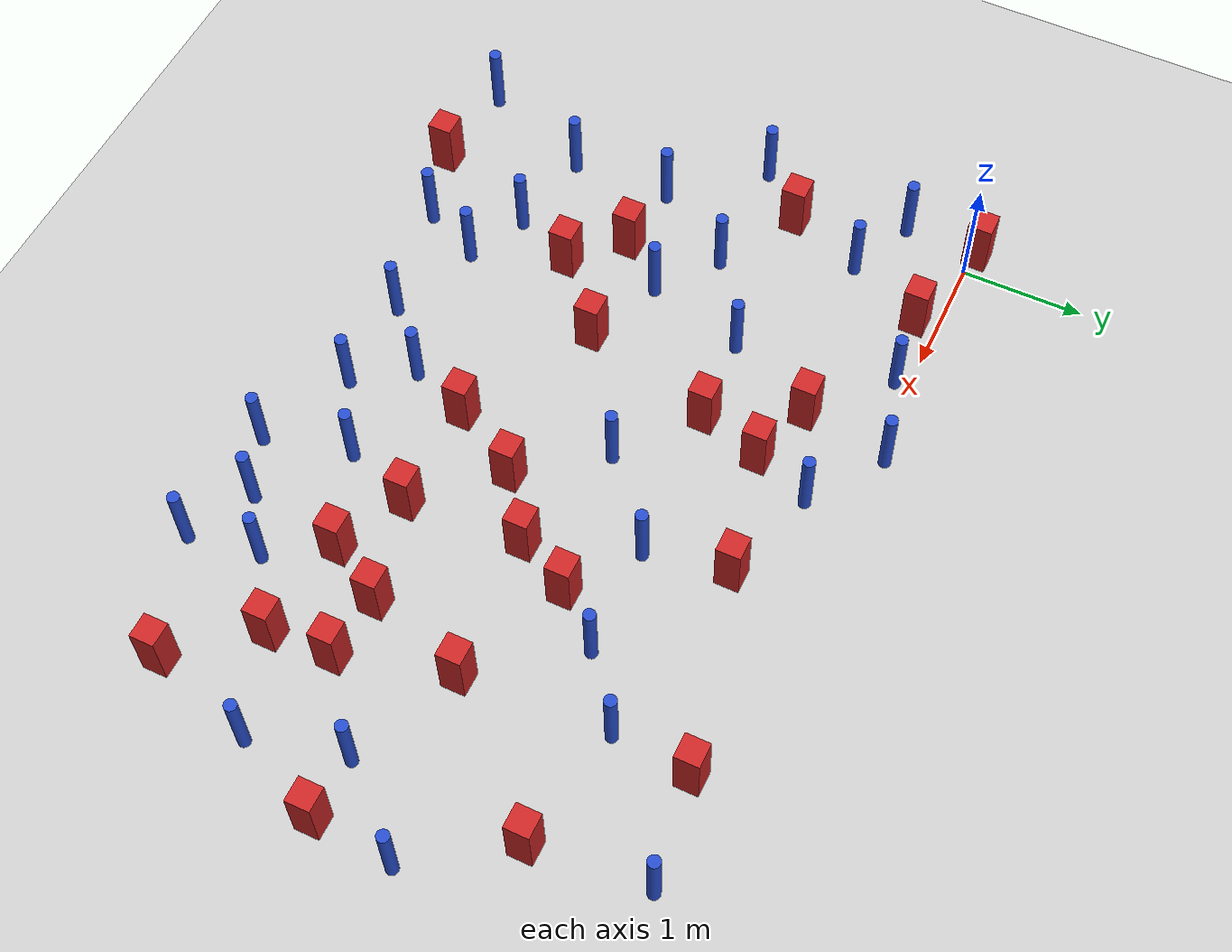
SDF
<sdf version="1.6">
 <world name="default">
  <model name="ground_plane">
   <static>1</static>
   <link name="link">
    <collision name="collision">
     <geometry><plane><normal>0 0 1</normal><size>100 100</size></plane></geometry>
     <surface><friction><ode><mu>100</mu><mu2>50</mu2></ode></friction></surface>
    </collision>
    <visual name="visual">
     <cast_shadows>0</cast_shadows>
     <geometry><plane><normal>0 0 1</normal><size>100 100</size></plane></geometry>
     <material>
      <ambient>1.0 1.0 1.0 1.0</ambient>
      <diffuse>0.8 0.8 0.8 1.0</diffuse>
      <specular>0.01 0.01 0.01 1.000000</specular>
     </material>
    </visual>
   </link>
  </model>
  <model name="NamedLocations">
   <static>true</static>
   <link name="DefaultStart"><pose>8.5 0 0 0 0 3.14</pose></link>
  </model>
  <model name="pole_obstacle1">
   <static>true</static>
   <pose>-0.185130693116 -0.5815067164 2.88873142074e-08 -9.90536690341e-09 4.60219948977e-07 -1.20965994968e-07</pose>
   <link name="link">
    <pose>0 0 0.3 0 -0 0</pose>
    <inertial>
     <mass>1</mass>
     <inertia><ixx>0.145833</ixx><ixy>0</ixy><ixz>0</ixz><iyy>0.145833</iyy><iyz>0</iyz><izz>0.125</izz></inertia>
    </inertial>
    <collision name="collision">
     <geometry><cylinder><radius>0.05</radius><length>.6</length></cylinder></geometry>
    </collision>
    <visual name="visual">
     <geometry><cylinder><radius>0.05</radius><length>.6</length></cylinder></geometry>
     <material>
      <script><name>Gazebo/Blue</name><uri>file://media/materials/scripts/gazebo.material</uri></script>
     </material>
    </visual>
   </link>
  </model>
  <model name="square_post_obstacle5">
   <static>true</static>
   <pose>4.07274696341 -1.62590643043 8.22691968438e-08 7.2212513382e-06 -7.54495500217e-07 2.29674213826e-05</pose>
   <link name="link">
    <pose>0 0 0.25 0 -0 0</pose>
    <inertial>
     <mass>100</mass>
     <inertia>
      <ixx>0.166667</ixx>
      <ixy>0</ixy>
      <ixz>0</ixz>
      <iyy>0.166667</iyy>
      <iyz>0</iyz>
      <izz>0.166667</izz>
     </inertia>
    </inertial>
    <collision name="collision"><geometry><box><size>.2 .2 .5</size></box></geometry></collision>
    <visual name="visual">
     <geometry><box><size>.2 .2 .5</size></box></geometry>
     <material>
      <script><name>Gazebo/Red</name><uri>file://media/materials/scripts/gazebo.material</uri></script>
     </material>
    </visual>
   </link>
  </model>
  <model name="pole_obstacle4">
   <static>true</static>
   <pose>1.2756648102 -0.111418900228 2.88873142074e-08 -9.90536689715e-09 4.60219948992e-07 -1.20965994959e-07</pose>
   <link name="link">
    <pose>0 0 0.3 0 -0 0</pose>
    <inertial>
     <mass>1</mass>
     <inertia><ixx>0.145833</ixx><ixy>0</ixy><ixz>0</ixz><iyy>0.145833</iyy><iyz>0</iyz><izz>0.125</izz></inertia>
    </inertial>
    <collision name="collision">
     <geometry><cylinder><radius>0.05</radius><length>.6</length></cylinder></geometry>
    </collision>
    <visual name="visual">
     <geometry><cylinder><radius>0.05</radius><length>.6</length></cylinder></geometry>
     <material>
      <script><name>Gazebo/Blue</name><uri>file://media/materials/scripts/gazebo.material</uri></script>
     </material>
    </visual>
   </link>
  </model>
  <model name="pole_obstacle5">
   <static>true</static>
   <pose>2.58989376314 -0.327966249412 2.88873142074e-08 -9.90536689307e-09 4.60219949002e-07 -1.20965994954e-07</pose>
   <link name="link">
    <pose>0 0 0.3 0 -0 0</pose>
    <inertial>
     <mass>1</mass>
     <inertia><ixx>0.145833</ixx><ixy>0</ixy><ixz>0</ixz><iyy>0.145833</iyy><iyz>0</iyz><izz>0.125</izz></inertia>
    </inertial>
    <collision name="collision">
     <geometry><cylinder><radius>0.05</radius><length>.6</length></cylinder></geometry>
    </collision>
    <visual name="visual">
     <geometry><cylinder><radius>0.05</radius><length>.6</length></cylinder></geometry>
     <material>
      <script><name>Gazebo/Blue</name><uri>file://media/materials/scripts/gazebo.material</uri></script>
     </material>
    </visual>
   </link>
  </model>
  <model name="square_post_obstacle13">
   <static>true</static>
   <pose>4.74317763244 -2.84132104916 8.22691968438e-08 7.2212513382e-06 -7.54495500217e-07 2.29674213826e-05</pose>
   <link name="link">
    <pose>0 0 0.25 0 -0 0</pose>
    <inertial>
     <mass>100</mass>
     <inertia>
      <ixx>0.166667</ixx>
      <ixy>0</ixy>
      <ixz>0</ixz>
      <iyy>0.166667</iyy>
      <iyz>0</iyz>
      <izz>0.166667</izz>
     </inertia>
    </inertial>
    <collision name="collision"><geometry><box><size>.2 .2 .5</size></box></geometry></collision>
    <visual name="visual">
     <geometry><box><size>.2 .2 .5</size></box></geometry>
     <material>
      <script><name>Gazebo/Red</name><uri>file://media/materials/scripts/gazebo.material</uri></script>
     </material>
    </visual>
   </link>
  </model>
  <model name="pole_obstacle8">
   <static>true</static>
   <pose>4.94769768114 -0.812549255114 2.88873142074e-08 -9.90536689837e-09 4.60219948989e-07 -1.2096599496e-07</pose>
   <link name="link">
    <pose>0 0 0.3 0 -0 0</pose>
    <inertial>
     <mass>1</mass>
     <inertia><ixx>0.145833</ixx><ixy>0</ixy><ixz>0</ixz><iyy>0.145833</iyy><iyz>0</iyz><izz>0.125</izz></inertia>
    </inertial>
    <collision name="collision">
     <geometry><cylinder><radius>0.05</radius><length>.6</length></cylinder></geometry>
    </collision>
    <visual name="visual">
     <geometry><cylinder><radius>0.05</radius><length>.6</length></cylinder></geometry>
     <material>
      <script><name>Gazebo/Blue</name><uri>file://media/materials/scripts/gazebo.material</uri></script>
     </material>
    </visual>
   </link>
  </model>
  <model name="square_post_obstacle18">
   <static>true</static>
   <pose>2.39872946446 -0.807188189583 8.22691968438e-08 7.2212513382e-06 -7.54495500217e-07 2.29674213826e-05</pose>
   <link name="link">
    <pose>0 0 0.25 0 -0 0</pose>
    <inertial>
     <mass>100</mass>
     <inertia>
      <ixx>0.166667</ixx>
      <ixy>0</ixy>
      <ixz>0</ixz>
      <iyy>0.166667</iyy>
      <iyz>0</iyz>
      <izz>0.166667</izz>
     </inertia>
    </inertial>
    <collision name="collision"><geometry><box><size>.2 .2 .5</size></box></geometry></collision>
    <visual name="visual">
     <geometry><box><size>.2 .2 .5</size></box></geometry>
     <material>
      <script><name>Gazebo/Red</name><uri>file://media/materials/scripts/gazebo.material</uri></script>
     </material>
    </visual>
   </link>
  </model>
  <model name="pole_obstacle10">
   <static>true</static>
   <pose>1.58691725315 -3.72829903937 2.88873142074e-08 -9.90536689791e-09 4.6021994899e-07 -1.20965994959e-07</pose>
   <link name="link">
    <pose>0 0 0.3 0 -0 0</pose>
    <inertial>
     <mass>1</mass>
     <inertia><ixx>0.145833</ixx><ixy>0</ixy><ixz>0</ixz><iyy>0.145833</iyy><iyz>0</iyz><izz>0.125</izz></inertia>
    </inertial>
    <collision name="collision">
     <geometry><cylinder><radius>0.05</radius><length>.6</length></cylinder></geometry>
    </collision>
    <visual name="visual">
     <geometry><cylinder><radius>0.05</radius><length>.6</length></cylinder></geometry>
     <material>
      <script><name>Gazebo/Blue</name><uri>file://media/materials/scripts/gazebo.material</uri></script>
     </material>
    </visual>
   </link>
  </model>
  <model name="square_post_obstacle19">
   <static>true</static>
   <pose>5.94538665112 -0.983028945299 8.22691968438e-08 7.2212513382e-06 -7.54495500217e-07 2.29674213826e-05</pose>
   <link name="link">
    <pose>0 0 0.25 0 -0 0</pose>
    <inertial>
     <mass>100</mass>
     <inertia>
      <ixx>0.166667</ixx>
      <ixy>0</ixy>
      <ixz>0</ixz>
      <iyy>0.166667</iyy>
      <iyz>0</iyz>
      <izz>0.166667</izz>
     </inertia>
    </inertial>
    <collision name="collision"><geometry><box><size>.2 .2 .5</size></box></geometry></collision>
    <visual name="visual">
     <geometry><box><size>.2 .2 .5</size></box></geometry>
     <material>
      <script><name>Gazebo/Red</name><uri>file://media/materials/scripts/gazebo.material</uri></script>
     </material>
    </visual>
   </link>
  </model>
  <model name="pole_obstacle15">
   <static>true</static>
   <pose>-0.0100249898607 -4.29935049244 2.88873142074e-08 -9.90536689611e-09 4.60219948995e-07 -1.20965994958e-07</pose>
   <link name="link">
    <pose>0 0 0.3 0 -0 0</pose>
    <inertial>
     <mass>1</mass>
     <inertia><ixx>0.145833</ixx><ixy>0</ixy><ixz>0</ixz><iyy>0.145833</iyy><iyz>0</iyz><izz>0.125</izz></inertia>
    </inertial>
    <collision name="collision">
     <geometry><cylinder><radius>0.05</radius><length>.6</length></cylinder></geometry>
    </collision>
    <visual name="visual">
     <geometry><cylinder><radius>0.05</radius><length>.6</length></cylinder></geometry>
     <material>
      <script><name>Gazebo/Blue</name><uri>file://media/materials/scripts/gazebo.material</uri></script>
     </material>
    </visual>
   </link>
  </model>
  <model name="pole_obstacle25">
   <static>true</static>
   <pose>4.84810254856 -4.40174628868 2.88873142074e-08 -9.90536690842e-09 4.60219948965e-07 -1.20965994976e-07</pose>
   <link name="link">
    <pose>0 0 0.3 0 -0 0</pose>
    <inertial>
     <mass>1</mass>
     <inertia><ixx>0.145833</ixx><ixy>0</ixy><ixz>0</ixz><iyy>0.145833</iyy><iyz>0</iyz><izz>0.125</izz></inertia>
    </inertial>
    <collision name="collision">
     <geometry><cylinder><radius>0.05</radius><length>.6</length></cylinder></geometry>
    </collision>
    <visual name="visual">
     <geometry><cylinder><radius>0.05</radius><length>.6</length></cylinder></geometry>
     <material>
      <script><name>Gazebo/Blue</name><uri>file://media/materials/scripts/gazebo.material</uri></script>
     </material>
    </visual>
   </link>
  </model>
  <model name="pole_obstacle26">
   <static>true</static>
   <pose>0.341179374261 -2.5330693544 2.88873142074e-08 -9.90536689663e-09 4.60219948993e-07 -1.20965994959e-07</pose>
   <link name="link">
    <pose>0 0 0.3 0 -0 0</pose>
    <inertial>
     <mass>1</mass>
     <inertia><ixx>0.145833</ixx><ixy>0</ixy><ixz>0</ixz><iyy>0.145833</iyy><iyz>0</iyz><izz>0.125</izz></inertia>
    </inertial>
    <collision name="collision">
     <geometry><cylinder><radius>0.05</radius><length>.6</length></cylinder></geometry>
    </collision>
    <visual name="visual">
     <geometry><cylinder><radius>0.05</radius><length>.6</length></cylinder></geometry>
     <material>
      <script><name>Gazebo/Blue</name><uri>file://media/materials/scripts/gazebo.material</uri></script>
     </material>
    </visual>
   </link>
  </model>
  <model name="square_post_obstacle35">
   <static>true</static>
   <pose>-0.165251494115 0.0400549485949 8.22691968438e-08 7.22125133819e-06 -7.54495500217e-07 2.29674213826e-05</pose>
   <link name="link">
    <pose>0 0 0.25 0 -0 0</pose>
    <inertial>
     <mass>100</mass>
     <inertia>
      <ixx>0.166667</ixx>
      <ixy>0</ixy>
      <ixz>0</ixz>
      <iyy>0.166667</iyy>
      <iyz>0</iyz>
      <izz>0.166667</izz>
     </inertia>
    </inertial>
    <collision name="collision"><geometry><box><size>.2 .2 .5</size></box></geometry></collision>
    <visual name="visual">
     <geometry><box><size>.2 .2 .5</size></box></geometry>
     <material>
      <script><name>Gazebo/Red</name><uri>file://media/materials/scripts/gazebo.material</uri></script>
     </material>
    </visual>
   </link>
  </model>
  <model name="pole_obstacle43">
   <static>true</static>
   <pose>1.36464720509 -4.19954920338 2.88873142074e-08 -9.90536689852e-09 4.60219948989e-07 -1.2096599496e-07</pose>
   <link name="link">
    <pose>0 0 0.3 0 -0 0</pose>
    <inertial>
     <mass>1</mass>
     <inertia><ixx>0.145833</ixx><ixy>0</ixy><ixz>0</ixz><iyy>0.145833</iyy><iyz>0</iyz><izz>0.125</izz></inertia>
    </inertial>
    <collision name="collision">
     <geometry><cylinder><radius>0.05</radius><length>.6</length></cylinder></geometry>
    </collision>
    <visual name="visual">
     <geometry><cylinder><radius>0.05</radius><length>.6</length></cylinder></geometry>
     <material>
      <script><name>Gazebo/Blue</name><uri>file://media/materials/scripts/gazebo.material</uri></script>
     </material>
    </visual>
   </link>
  </model>
  <model name="square_post_obstacle48">
   <static>true</static>
   <pose>2.23582939153 -1.32906481546 8.22691968438e-08 7.2212513382e-06 -7.54495500217e-07 2.29674213826e-05</pose>
   <link name="link">
    <pose>0 0 0.25 0 -0 0</pose>
    <inertial>
     <mass>100</mass>
     <inertia>
      <ixx>0.166667</ixx>
      <ixy>0</ixy>
      <ixz>0</ixz>
      <iyy>0.166667</iyy>
      <iyz>0</iyz>
      <izz>0.166667</izz>
     </inertia>
    </inertial>
    <collision name="collision"><geometry><box><size>.2 .2 .5</size></box></geometry></collision>
    <visual name="visual">
     <geometry><box><size>.2 .2 .5</size></box></geometry>
     <material>
      <script><name>Gazebo/Red</name><uri>file://media/materials/scripts/gazebo.material</uri></script>
     </material>
    </visual>
   </link>
  </model>
  <model name="square_post_obstacle49">
   <static>true</static>
   <pose>0.128574017205 -1.45696994531 8.22691968438e-08 7.2212513382e-06 -7.54495500217e-07 2.29674213826e-05</pose>
   <link name="link">
    <pose>0 0 0.25 0 -0 0</pose>
    <inertial>
     <mass>100</mass>
     <inertia>
      <ixx>0.166667</ixx>
      <ixy>0</ixy>
      <ixz>0</ixz>
      <iyy>0.166667</iyy>
      <iyz>0</iyz>
      <izz>0.166667</izz>
     </inertia>
    </inertial>
    <collision name="collision"><geometry><box><size>.2 .2 .5</size></box></geometry></collision>
    <visual name="visual">
     <geometry><box><size>.2 .2 .5</size></box></geometry>
     <material>
      <script><name>Gazebo/Red</name><uri>file://media/materials/scripts/gazebo.material</uri></script>
     </material>
    </visual>
   </link>
  </model>
  <model name="pole_obstacle53">
   <static>true</static>
   <pose>6.46625615034 -1.74263192992 2.88873142074e-08 -9.90536689445e-09 4.60219948999e-07 -1.20965994956e-07</pose>
   <link name="link">
    <pose>0 0 0.3 0 -0 0</pose>
    <inertial>
     <mass>1</mass>
     <inertia><ixx>0.145833</ixx><ixy>0</ixy><ixz>0</ixz><iyy>0.145833</iyy><iyz>0</iyz><izz>0.125</izz></inertia>
    </inertial>
    <collision name="collision">
     <geometry><cylinder><radius>0.05</radius><length>.6</length></cylinder></geometry>
    </collision>
    <visual name="visual">
     <geometry><cylinder><radius>0.05</radius><length>.6</length></cylinder></geometry>
     <material>
      <script><name>Gazebo/Blue</name><uri>file://media/materials/scripts/gazebo.material</uri></script>
     </material>
    </visual>
   </link>
  </model>
  <model name="square_post_obstacle58">
   <static>true</static>
   <pose>1.90014476493 -2.46379216931 8.22691968438e-08 7.2212513382e-06 -7.54495500217e-07 2.29674213826e-05</pose>
   <link name="link">
    <pose>0 0 0.25 0 -0 0</pose>
    <inertial>
     <mass>100</mass>
     <inertia>
      <ixx>0.166667</ixx>
      <ixy>0</ixy>
      <ixz>0</ixz>
      <iyy>0.166667</iyy>
      <iyz>0</iyz>
      <izz>0.166667</izz>
     </inertia>
    </inertial>
    <collision name="collision"><geometry><box><size>.2 .2 .5</size></box></geometry></collision>
    <visual name="visual">
     <geometry><box><size>.2 .2 .5</size></box></geometry>
     <material>
      <script><name>Gazebo/Red</name><uri>file://media/materials/scripts/gazebo.material</uri></script>
     </material>
    </visual>
   </link>
  </model>
  <model name="pole_obstacle64">
   <static>true</static>
   <pose>-0.243095953086 -1.84903900185 2.88873142074e-08 -9.90536689692e-09 4.60219948993e-07 -1.20965994958e-07</pose>
   <link name="link">
    <pose>0 0 0.3 0 -0 0</pose>
    <inertial>
     <mass>1</mass>
     <inertia><ixx>0.145833</ixx><ixy>0</ixy><ixz>0</ixz><iyy>0.145833</iyy><iyz>0</iyz><izz>0.125</izz></inertia>
    </inertial>
    <collision name="collision">
     <geometry><cylinder><radius>0.05</radius><length>.6</length></cylinder></geometry>
    </collision>
    <visual name="visual">
     <geometry><cylinder><radius>0.05</radius><length>.6</length></cylinder></geometry>
     <material>
      <script><name>Gazebo/Blue</name><uri>file://media/materials/scripts/gazebo.material</uri></script>
     </material>
    </visual>
   </link>
  </model>
  <model name="pole_obstacle65">
   <static>true</static>
   <pose>2.85040480021 -1.82261968247 2.88873142074e-08 -9.90536689395e-09 4.60219949e-07 -1.20965994953e-07</pose>
   <link name="link">
    <pose>0 0 0.3 0 -0 0</pose>
    <inertial>
     <mass>1</mass>
     <inertia><ixx>0.145833</ixx><ixy>0</ixy><ixz>0</ixz><iyy>0.145833</iyy><iyz>0</iyz><izz>0.125</izz></inertia>
    </inertial>
    <collision name="collision">
     <geometry><cylinder><radius>0.05</radius><length>.6</length></cylinder></geometry>
    </collision>
    <visual name="visual">
     <geometry><cylinder><radius>0.05</radius><length>.6</length></cylinder></geometry>
     <material>
      <script><name>Gazebo/Blue</name><uri>file://media/materials/scripts/gazebo.material</uri></script>
     </material>
    </visual>
   </link>
  </model>
  <model name="square_post_obstacle68">
   <static>true</static>
   <pose>5.00058886882 -0.168616555313 8.22691968438e-08 7.2212513382e-06 -7.54495500217e-07 2.29674213826e-05</pose>
   <link name="link">
    <pose>0 0 0.25 0 -0 0</pose>
    <inertial>
     <mass>100</mass>
     <inertia>
      <ixx>0.166667</ixx>
      <ixy>0</ixy>
      <ixz>0</ixz>
      <iyy>0.166667</iyy>
      <iyz>0</iyz>
      <izz>0.166667</izz>
     </inertia>
    </inertial>
    <collision name="collision"><geometry><box><size>.2 .2 .5</size></box></geometry></collision>
    <visual name="visual">
     <geometry><box><size>.2 .2 .5</size></box></geometry>
     <material>
      <script><name>Gazebo/Red</name><uri>file://media/materials/scripts/gazebo.material</uri></script>
     </material>
    </visual>
   </link>
  </model>
  <model name="pole_obstacle70">
   <static>true</static>
   <pose>0.363182992762 -3.36609427107 2.88873142074e-08 -9.90536689663e-09 4.60219948993e-07 -1.20965994959e-07</pose>
   <link name="link">
    <pose>0 0 0.3 0 -0 0</pose>
    <inertial>
     <mass>1</mass>
     <inertia><ixx>0.145833</ixx><ixy>0</ixy><ixz>0</ixz><iyy>0.145833</iyy><iyz>0</iyz><izz>0.125</izz></inertia>
    </inertial>
    <collision name="collision">
     <geometry><cylinder><radius>0.05</radius><length>.6</length></cylinder></geometry>
    </collision>
    <visual name="visual">
     <geometry><cylinder><radius>0.05</radius><length>.6</length></cylinder></geometry>
     <material>
      <script><name>Gazebo/Blue</name><uri>file://media/materials/scripts/gazebo.material</uri></script>
     </material>
    </visual>
   </link>
  </model>
  <model name="pole_obstacle85">
   <static>true</static>
   <pose>1.99145522379 0.0883656927276 2.88873142074e-08 -9.90536691348e-09 4.60219948953e-07 -1.20965994985e-07</pose>
   <link name="link">
    <pose>0 0 0.3 0 -0 0</pose>
    <inertial>
     <mass>1</mass>
     <inertia><ixx>0.145833</ixx><ixy>0</ixy><ixz>0</ixz><iyy>0.145833</iyy><iyz>0</iyz><izz>0.125</izz></inertia>
    </inertial>
    <collision name="collision">
     <geometry><cylinder><radius>0.05</radius><length>.6</length></cylinder></geometry>
    </collision>
    <visual name="visual">
     <geometry><cylinder><radius>0.05</radius><length>.6</length></cylinder></geometry>
     <material>
      <script><name>Gazebo/Blue</name><uri>file://media/materials/scripts/gazebo.material</uri></script>
     </material>
    </visual>
   </link>
  </model>
  <model name="square_post_obstacle84">
   <static>true</static>
   <pose>5.80408043261 -4.01826733563 8.22691968438e-08 7.2212513382e-06 -7.54495500217e-07 2.29674213826e-05</pose>
   <link name="link">
    <pose>0 0 0.25 0 -0 0</pose>
    <inertial>
     <mass>100</mass>
     <inertia>
      <ixx>0.166667</ixx>
      <ixy>0</ixy>
      <ixz>0</ixz>
      <iyy>0.166667</iyy>
      <iyz>0</iyz>
      <izz>0.166667</izz>
     </inertia>
    </inertial>
    <collision name="collision"><geometry><box><size>.2 .2 .5</size></box></geometry></collision>
    <visual name="visual">
     <geometry><box><size>.2 .2 .5</size></box></geometry>
     <material>
      <script><name>Gazebo/Red</name><uri>file://media/materials/scripts/gazebo.material</uri></script>
     </material>
    </visual>
   </link>
  </model>
  <model name="square_post_obstacle87">
   <static>true</static>
   <pose>3.00440219801 -3.03895604973 8.22691968438e-08 7.2212513382e-06 -7.54495500217e-07 2.29674213826e-05</pose>
   <link name="link">
    <pose>0 0 0.25 0 -0 0</pose>
    <inertial>
     <mass>100</mass>
     <inertia>
      <ixx>0.166667</ixx>
      <ixy>0</ixy>
      <ixz>0</ixz>
      <iyy>0.166667</iyy>
      <iyz>0</iyz>
      <izz>0.166667</izz>
     </inertia>
    </inertial>
    <collision name="collision"><geometry><box><size>.2 .2 .5</size></box></geometry></collision>
    <visual name="visual">
     <geometry><box><size>.2 .2 .5</size></box></geometry>
     <material>
      <script><name>Gazebo/Red</name><uri>file://media/materials/scripts/gazebo.material</uri></script>
     </material>
    </visual>
   </link>
  </model>
  <model name="pole_obstacle124">
   <static>true</static>
   <pose>3.52725288687 -1.24872715459 2.88873142074e-08 -9.90536689395e-09 4.60219949e-07 -1.20965994953e-07</pose>
   <link name="link">
    <pose>0 0 0.3 0 -0 0</pose>
    <inertial>
     <mass>1</mass>
     <inertia><ixx>0.145833</ixx><ixy>0</ixy><ixz>0</ixz><iyy>0.145833</iyy><iyz>0</iyz><izz>0.125</izz></inertia>
    </inertial>
    <collision name="collision">
     <geometry><cylinder><radius>0.05</radius><length>.6</length></cylinder></geometry>
    </collision>
    <visual name="visual">
     <geometry><cylinder><radius>0.05</radius><length>.6</length></cylinder></geometry>
     <material>
      <script><name>Gazebo/Blue</name><uri>file://media/materials/scripts/gazebo.material</uri></script>
     </material>
    </visual>
   </link>
  </model>
  <model name="pole_obstacle132">
   <static>true</static>
   <pose>0.367348133882 -0.825134937174 2.88873142074e-08 -9.9053668986e-09 4.60219948989e-07 -1.20965994961e-07</pose>
   <link name="link">
    <pose>0 0 0.3 0 -0 0</pose>
    <inertial>
     <mass>1</mass>
     <inertia><ixx>0.145833</ixx><ixy>0</ixy><ixz>0</ixz><iyy>0.145833</iyy><iyz>0</iyz><izz>0.125</izz></inertia>
    </inertial>
    <collision name="collision">
     <geometry><cylinder><radius>0.05</radius><length>.6</length></cylinder></geometry>
    </collision>
    <visual name="visual">
     <geometry><cylinder><radius>0.05</radius><length>.6</length></cylinder></geometry>
     <material>
      <script><name>Gazebo/Blue</name><uri>file://media/materials/scripts/gazebo.material</uri></script>
     </material>
    </visual>
   </link>
  </model>
  <model name="pole_obstacle134">
   <static>true</static>
   <pose>1.49889430895 -1.38467383807 2.88873142074e-08 -9.90536689672e-09 4.60219948993e-07 -1.20965994959e-07</pose>
   <link name="link">
    <pose>0 0 0.3 0 -0 0</pose>
    <inertial>
     <mass>1</mass>
     <inertia><ixx>0.145833</ixx><ixy>0</ixy><ixz>0</ixz><iyy>0.145833</iyy><iyz>0</iyz><izz>0.125</izz></inertia>
    </inertial>
    <collision name="collision">
     <geometry><cylinder><radius>0.05</radius><length>.6</length></cylinder></geometry>
    </collision>
    <visual name="visual">
     <geometry><cylinder><radius>0.05</radius><length>.6</length></cylinder></geometry>
     <material>
      <script><name>Gazebo/Blue</name><uri>file://media/materials/scripts/gazebo.material</uri></script>
     </material>
    </visual>
   </link>
  </model>
  <model name="pole_obstacle135">
   <static>true</static>
   <pose>4.33471470747 -4.13063483083 2.88873142074e-08 -9.90536690842e-09 4.60219948965e-07 -1.20965994976e-07</pose>
   <link name="link">
    <pose>0 0 0.3 0 -0 0</pose>
    <inertial>
     <mass>1</mass>
     <inertia><ixx>0.145833</ixx><ixy>0</ixy><ixz>0</ixz><iyy>0.145833</iyy><iyz>0</iyz><izz>0.125</izz></inertia>
    </inertial>
    <collision name="collision">
     <geometry><cylinder><radius>0.05</radius><length>.6</length></cylinder></geometry>
    </collision>
    <visual name="visual">
     <geometry><cylinder><radius>0.05</radius><length>.6</length></cylinder></geometry>
     <material>
      <script><name>Gazebo/Blue</name><uri>file://media/materials/scripts/gazebo.material</uri></script>
     </material>
    </visual>
   </link>
  </model>
  <model name="square_post_obstacle128">
   <static>true</static>
   <pose>3.40901335062 -0.571415719157 8.22691968438e-08 7.2212513382e-06 -7.54495500217e-07 2.29674213826e-05</pose>
   <link name="link">
    <pose>0 0 0.25 0 -0 0</pose>
    <inertial>
     <mass>100</mass>
     <inertia>
      <ixx>0.166667</ixx>
      <ixy>0</ixy>
      <ixz>0</ixz>
      <iyy>0.166667</iyy>
      <iyz>0</iyz>
      <izz>0.166667</izz>
     </inertia>
    </inertial>
    <collision name="collision"><geometry><box><size>.2 .2 .5</size></box></geometry></collision>
    <visual name="visual">
     <geometry><box><size>.2 .2 .5</size></box></geometry>
     <material>
      <script><name>Gazebo/Red</name><uri>file://media/materials/scripts/gazebo.material</uri></script>
     </material>
    </visual>
   </link>
  </model>
  <model name="pole_obstacle143">
   <static>true</static>
   <pose>4.41598786378 -1.23484766648 2.88873142074e-08 -9.90536689445e-09 4.60219948999e-07 -1.20965994956e-07</pose>
   <link name="link">
    <pose>0 0 0.3 0 -0 0</pose>
    <inertial>
     <mass>1</mass>
     <inertia><ixx>0.145833</ixx><ixy>0</ixy><ixz>0</ixz><iyy>0.145833</iyy><iyz>0</iyz><izz>0.125</izz></inertia>
    </inertial>
    <collision name="collision">
     <geometry><cylinder><radius>0.05</radius><length>.6</length></cylinder></geometry>
    </collision>
    <visual name="visual">
     <geometry><cylinder><radius>0.05</radius><length>.6</length></cylinder></geometry>
     <material>
      <script><name>Gazebo/Blue</name><uri>file://media/materials/scripts/gazebo.material</uri></script>
     </material>
    </visual>
   </link>
  </model>
  <model name="pole_obstacle144">
   <static>true</static>
   <pose>5.89685654159 -2.38586208284 2.88873142074e-08 -9.90536690245e-09 4.6021994898e-07 -1.20965994966e-07</pose>
   <link name="link">
    <pose>0 0 0.3 0 -0 0</pose>
    <inertial>
     <mass>1</mass>
     <inertia><ixx>0.145833</ixx><ixy>0</ixy><ixz>0</ixz><iyy>0.145833</iyy><iyz>0</iyz><izz>0.125</izz></inertia>
    </inertial>
    <collision name="collision">
     <geometry><cylinder><radius>0.05</radius><length>.6</length></cylinder></geometry>
    </collision>
    <visual name="visual">
     <geometry><cylinder><radius>0.05</radius><length>.6</length></cylinder></geometry>
     <material>
      <script><name>Gazebo/Blue</name><uri>file://media/materials/scripts/gazebo.material</uri></script>
     </material>
    </visual>
   </link>
  </model>
  <model name="pole_obstacle146">
   <static>true</static>
   <pose>4.76127263263 -3.8109576503 2.88873142074e-08 -9.90536690245e-09 4.6021994898e-07 -1.20965994966e-07</pose>
   <link name="link">
    <pose>0 0 0.3 0 -0 0</pose>
    <inertial>
     <mass>1</mass>
     <inertia><ixx>0.145833</ixx><ixy>0</ixy><ixz>0</ixz><iyy>0.145833</iyy><iyz>0</iyz><izz>0.125</izz></inertia>
    </inertial>
    <collision name="collision">
     <geometry><cylinder><radius>0.05</radius><length>.6</length></cylinder></geometry>
    </collision>
    <visual name="visual">
     <geometry><cylinder><radius>0.05</radius><length>.6</length></cylinder></geometry>
     <material>
      <script><name>Gazebo/Blue</name><uri>file://media/materials/scripts/gazebo.material</uri></script>
     </material>
    </visual>
   </link>
  </model>
  <model name="square_post_obstacle139">
   <static>true</static>
   <pose>0.75035310821 -4.38304786205 8.22691968438e-08 7.22125133819e-06 -7.54495500217e-07 2.29674213826e-05</pose>
   <link name="link">
    <pose>0 0 0.25 0 -0 0</pose>
    <inertial>
     <mass>100</mass>
     <inertia>
      <ixx>0.166667</ixx>
      <ixy>0</ixy>
      <ixz>0</ixz>
      <iyy>0.166667</iyy>
      <iyz>0</iyz>
      <izz>0.166667</izz>
     </inertia>
    </inertial>
    <collision name="collision"><geometry><box><size>.2 .2 .5</size></box></geometry></collision>
    <visual name="visual">
     <geometry><box><size>.2 .2 .5</size></box></geometry>
     <material>
      <script><name>Gazebo/Red</name><uri>file://media/materials/scripts/gazebo.material</uri></script>
     </material>
    </visual>
   </link>
  </model>
  <model name="pole_obstacle154">
   <static>true</static>
   <pose>2.81299624004 -3.55003781145 2.88873142074e-08 -9.90536690232e-09 4.6021994898e-07 -1.20965994968e-07</pose>
   <link name="link">
    <pose>0 0 0.3 0 -0 0</pose>
    <inertial>
     <mass>1</mass>
     <inertia><ixx>0.145833</ixx><ixy>0</ixy><ixz>0</ixz><iyy>0.145833</iyy><iyz>0</iyz><izz>0.125</izz></inertia>
    </inertial>
    <collision name="collision">
     <geometry><cylinder><radius>0.05</radius><length>.6</length></cylinder></geometry>
    </collision>
    <visual name="visual">
     <geometry><cylinder><radius>0.05</radius><length>.6</length></cylinder></geometry>
     <material>
      <script><name>Gazebo/Blue</name><uri>file://media/materials/scripts/gazebo.material</uri></script>
     </material>
    </visual>
   </link>
  </model>
  <model name="square_post_obstacle144">
   <static>true</static>
   <pose>1.86882768614 -0.634493336645 8.22691968438e-08 7.2212513382e-06 -7.54495500217e-07 2.29674213826e-05</pose>
   <link name="link">
    <pose>0 0 0.25 0 -0 0</pose>
    <inertial>
     <mass>100</mass>
     <inertia>
      <ixx>0.166667</ixx>
      <ixy>0</ixy>
      <ixz>0</ixz>
      <iyy>0.166667</iyy>
      <iyz>0</iyz>
      <izz>0.166667</izz>
     </inertia>
    </inertial>
    <collision name="collision"><geometry><box><size>.2 .2 .5</size></box></geometry></collision>
    <visual name="visual">
     <geometry><box><size>.2 .2 .5</size></box></geometry>
     <material>
      <script><name>Gazebo/Red</name><uri>file://media/materials/scripts/gazebo.material</uri></script>
     </material>
    </visual>
   </link>
  </model>
  <model name="square_post_obstacle153">
   <static>true</static>
   <pose>5.25960555352 -2.89612216552 8.22691968438e-08 7.2212513382e-06 -7.54495500217e-07 2.29674213826e-05</pose>
   <link name="link">
    <pose>0 0 0.25 0 -0 0</pose>
    <inertial>
     <mass>100</mass>
     <inertia>
      <ixx>0.166667</ixx>
      <ixy>0</ixy>
      <ixz>0</ixz>
      <iyy>0.166667</iyy>
      <iyz>0</iyz>
      <izz>0.166667</izz>
     </inertia>
    </inertial>
    <collision name="collision"><geometry><box><size>.2 .2 .5</size></box></geometry></collision>
    <visual name="visual">
     <geometry><box><size>.2 .2 .5</size></box></geometry>
     <material>
      <script><name>Gazebo/Red</name><uri>file://media/materials/scripts/gazebo.material</uri></script>
     </material>
    </visual>
   </link>
  </model>
  <model name="square_post_obstacle158">
   <static>true</static>
   <pose>5.01587297367 -2.00166901299 8.22691968438e-08 7.2212513382e-06 -7.54495500217e-07 2.29674213826e-05</pose>
   <link name="link">
    <pose>0 0 0.25 0 -0 0</pose>
    <inertial>
     <mass>100</mass>
     <inertia>
      <ixx>0.166667</ixx>
      <ixy>0</ixy>
      <ixz>0</ixz>
      <iyy>0.166667</iyy>
      <iyz>0</iyz>
      <izz>0.166667</izz>
     </inertia>
    </inertial>
    <collision name="collision"><geometry><box><size>.2 .2 .5</size></box></geometry></collision>
    <visual name="visual">
     <geometry><box><size>.2 .2 .5</size></box></geometry>
     <material>
      <script><name>Gazebo/Red</name><uri>file://media/materials/scripts/gazebo.material</uri></script>
     </material>
    </visual>
   </link>
  </model>
  <model name="pole_obstacle167">
   <static>true</static>
   <pose>0.782694149184 -1.84260623673 2.88873142074e-08 -9.90536689855e-09 4.60219948989e-07 -1.20965994962e-07</pose>
   <link name="link">
    <pose>0 0 0.3 0 -0 0</pose>
    <inertial>
     <mass>1</mass>
     <inertia><ixx>0.145833</ixx><ixy>0</ixy><ixz>0</ixz><iyy>0.145833</iyy><iyz>0</iyz><izz>0.125</izz></inertia>
    </inertial>
    <collision name="collision">
     <geometry><cylinder><radius>0.05</radius><length>.6</length></cylinder></geometry>
    </collision>
    <visual name="visual">
     <geometry><cylinder><radius>0.05</radius><length>.6</length></cylinder></geometry>
     <material>
      <script><name>Gazebo/Blue</name><uri>file://media/materials/scripts/gazebo.material</uri></script>
     </material>
    </visual>
   </link>
  </model>
  <model name="pole_obstacle175">
   <static>true</static>
   <pose>3.85839189997 -4.34083737327 2.88873142074e-08 -9.90536689859e-09 4.60219948989e-07 -1.20965994961e-07</pose>
   <link name="link">
    <pose>0 0 0.3 0 -0 0</pose>
    <inertial>
     <mass>1</mass>
     <inertia><ixx>0.145833</ixx><ixy>0</ixy><ixz>0</ixz><iyy>0.145833</iyy><iyz>0</iyz><izz>0.125</izz></inertia>
    </inertial>
    <collision name="collision">
     <geometry><cylinder><radius>0.05</radius><length>.6</length></cylinder></geometry>
    </collision>
    <visual name="visual">
     <geometry><cylinder><radius>0.05</radius><length>.6</length></cylinder></geometry>
     <material>
      <script><name>Gazebo/Blue</name><uri>file://media/materials/scripts/gazebo.material</uri></script>
     </material>
    </visual>
   </link>
  </model>
  <model name="pole_obstacle177">
   <static>true</static>
   <pose>1.26353560344 -2.20895812336 2.88873142074e-08 -9.90536689791e-09 4.6021994899e-07 -1.20965994959e-07</pose>
   <link name="link">
    <pose>0 0 0.3 0 -0 0</pose>
    <inertial>
     <mass>1</mass>
     <inertia><ixx>0.145833</ixx><ixy>0</ixy><ixz>0</ixz><iyy>0.145833</iyy><iyz>0</iyz><izz>0.125</izz></inertia>
    </inertial>
    <collision name="collision">
     <geometry><cylinder><radius>0.05</radius><length>.6</length></cylinder></geometry>
    </collision>
    <visual name="visual">
     <geometry><cylinder><radius>0.05</radius><length>.6</length></cylinder></geometry>
     <material>
      <script><name>Gazebo/Blue</name><uri>file://media/materials/scripts/gazebo.material</uri></script>
     </material>
    </visual>
   </link>
  </model>
  <model name="square_post_obstacle167">
   <static>true</static>
   <pose>0.939437769798 -2.59290789155 8.22691968438e-08 7.2212513382e-06 -7.54495500217e-07 2.29674213826e-05</pose>
   <link name="link">
    <pose>0 0 0.25 0 -0 0</pose>
    <inertial>
     <mass>100</mass>
     <inertia>
      <ixx>0.166667</ixx>
      <ixy>0</ixy>
      <ixz>0</ixz>
      <iyy>0.166667</iyy>
      <iyz>0</iyz>
      <izz>0.166667</izz>
     </inertia>
    </inertial>
    <collision name="collision"><geometry><box><size>.2 .2 .5</size></box></geometry></collision>
    <visual name="visual">
     <geometry><box><size>.2 .2 .5</size></box></geometry>
     <material>
      <script><name>Gazebo/Red</name><uri>file://media/materials/scripts/gazebo.material</uri></script>
     </material>
    </visual>
   </link>
  </model>
  <model name="pole_obstacle179">
   <static>true</static>
   <pose>3.10517146622 -4.00345136273 2.88873142074e-08 -9.90536690007e-09 4.60219948985e-07 -1.20965994963e-07</pose>
   <link name="link">
    <pose>0 0 0.3 0 -0 0</pose>
    <inertial>
     <mass>1</mass>
     <inertia><ixx>0.145833</ixx><ixy>0</ixy><ixz>0</ixz><iyy>0.145833</iyy><iyz>0</iyz><izz>0.125</izz></inertia>
    </inertial>
    <collision name="collision">
     <geometry><cylinder><radius>0.05</radius><length>.6</length></cylinder></geometry>
    </collision>
    <visual name="visual">
     <geometry><cylinder><radius>0.05</radius><length>.6</length></cylinder></geometry>
     <material>
      <script><name>Gazebo/Blue</name><uri>file://media/materials/scripts/gazebo.material</uri></script>
     </material>
    </visual>
   </link>
  </model>
  <model name="pole_obstacle184">
   <static>true</static>
   <pose>6.08842848646 -3.15003862244 2.88873142074e-08 -9.90536690245e-09 4.6021994898e-07 -1.20965994966e-07</pose>
   <link name="link">
    <pose>0 0 0.3 0 -0 0</pose>
    <inertial>
     <mass>1</mass>
     <inertia><ixx>0.145833</ixx><ixy>0</ixy><ixz>0</ixz><iyy>0.145833</iyy><iyz>0</iyz><izz>0.125</izz></inertia>
    </inertial>
    <collision name="collision">
     <geometry><cylinder><radius>0.05</radius><length>.6</length></cylinder></geometry>
    </collision>
    <visual name="visual">
     <geometry><cylinder><radius>0.05</radius><length>.6</length></cylinder></geometry>
     <material>
      <script><name>Gazebo/Blue</name><uri>file://media/materials/scripts/gazebo.material</uri></script>
     </material>
    </visual>
   </link>
  </model>
  <model name="pole_obstacle187">
   <static>true</static>
   <pose>1.10254909893 -3.49329653644 2.88873142074e-08 -9.90536689791e-09 4.6021994899e-07 -1.20965994959e-07</pose>
   <link name="link">
    <pose>0 0 0.3 0 -0 0</pose>
    <inertial>
     <mass>1</mass>
     <inertia><ixx>0.145833</ixx><ixy>0</ixy><ixz>0</ixz><iyy>0.145833</iyy><iyz>0</iyz><izz>0.125</izz></inertia>
    </inertial>
    <collision name="collision">
     <geometry><cylinder><radius>0.05</radius><length>.6</length></cylinder></geometry>
    </collision>
    <visual name="visual">
     <geometry><cylinder><radius>0.05</radius><length>.6</length></cylinder></geometry>
     <material>
      <script><name>Gazebo/Blue</name><uri>file://media/materials/scripts/gazebo.material</uri></script>
     </material>
    </visual>
   </link>
  </model>
  <model name="square_post_obstacle176">
   <static>true</static>
   <pose>0.667381694351 -0.180195463661 8.22691968438e-08 7.2212513382e-06 -7.54495500217e-07 2.29674213826e-05</pose>
   <link name="link">
    <pose>0 0 0.25 0 -0 0</pose>
    <inertial>
     <mass>100</mass>
     <inertia>
      <ixx>0.166667</ixx>
      <ixy>0</ixy>
      <ixz>0</ixz>
      <iyy>0.166667</iyy>
      <iyz>0</iyz>
      <izz>0.166667</izz>
     </inertia>
    </inertial>
    <collision name="collision"><geometry><box><size>.2 .2 .5</size></box></geometry></collision>
    <visual name="visual">
     <geometry><box><size>.2 .2 .5</size></box></geometry>
     <material>
      <script><name>Gazebo/Red</name><uri>file://media/materials/scripts/gazebo.material</uri></script>
     </material>
    </visual>
   </link>
  </model>
  <model name="square_post_obstacle177">
   <static>true</static>
   <pose>3.90563827152 -3.04259913546 8.22691968438e-08 7.22125133819e-06 -7.54495500217e-07 2.29674213826e-05</pose>
   <link name="link">
    <pose>0 0 0.25 0 -0 0</pose>
    <inertial>
     <mass>100</mass>
     <inertia>
      <ixx>0.166667</ixx>
      <ixy>0</ixy>
      <ixz>0</ixz>
      <iyy>0.166667</iyy>
      <iyz>0</iyz>
      <izz>0.166667</izz>
     </inertia>
    </inertial>
    <collision name="collision"><geometry><box><size>.2 .2 .5</size></box></geometry></collision>
    <visual name="visual">
     <geometry><box><size>.2 .2 .5</size></box></geometry>
     <material>
      <script><name>Gazebo/Red</name><uri>file://media/materials/scripts/gazebo.material</uri></script>
     </material>
    </visual>
   </link>
  </model>
  <model name="square_post_obstacle192">
   <static>true</static>
   <pose>1.32504471027 -2.97409290307 8.22691968438e-08 7.2212513382e-06 -7.54495500217e-07 2.29674213826e-05</pose>
   <link name="link">
    <pose>0 0 0.25 0 -0 0</pose>
    <inertial>
     <mass>100</mass>
     <inertia>
      <ixx>0.166667</ixx>
      <ixy>0</ixy>
      <ixz>0</ixz>
      <iyy>0.166667</iyy>
      <iyz>0</iyz>
      <izz>0.166667</izz>
     </inertia>
    </inertial>
    <collision name="collision"><geometry><box><size>.2 .2 .5</size></box></geometry></collision>
    <visual name="visual">
     <geometry><box><size>.2 .2 .5</size></box></geometry>
     <material>
      <script><name>Gazebo/Red</name><uri>file://media/materials/scripts/gazebo.material</uri></script>
     </material>
    </visual>
   </link>
  </model>
  <model name="pole_obstacle188">
   <static>true</static>
   <pose>3.68620721444 -3.63536482593 2.88873142074e-08 -9.90536690232e-09 4.6021994898e-07 -1.20965994968e-07</pose>
   <link name="link">
    <pose>0 0 0.3 0 -0 0</pose>
    <inertial>
     <mass>1</mass>
     <inertia><ixx>0.145833</ixx><ixy>0</ixy><ixz>0</ixz><iyy>0.145833</iyy><iyz>0</iyz><izz>0.125</izz></inertia>
    </inertial>
    <collision name="collision">
     <geometry><cylinder><radius>0.05</radius><length>.6</length></cylinder></geometry>
    </collision>
    <visual name="visual">
     <geometry><cylinder><radius>0.05</radius><length>.6</length></cylinder></geometry>
     <material>
      <script><name>Gazebo/Blue</name><uri>file://media/materials/scripts/gazebo.material</uri></script>
     </material>
    </visual>
   </link>
  </model>
  <model name="pole_obstacle190">
   <static>true</static>
   <pose>5.86235771236 -0.0507572135262 2.88873142074e-08 -9.90536689836e-09 4.60219948989e-07 -1.20965994962e-07</pose>
   <link name="link">
    <pose>0 0 0.3 0 -0 0</pose>
    <inertial>
     <mass>1</mass>
     <inertia><ixx>0.145833</ixx><ixy>0</ixy><ixz>0</ixz><iyy>0.145833</iyy><iyz>0</iyz><izz>0.125</izz></inertia>
    </inertial>
    <collision name="collision">
     <geometry><cylinder><radius>0.05</radius><length>.6</length></cylinder></geometry>
    </collision>
    <visual name="visual">
     <geometry><cylinder><radius>0.05</radius><length>.6</length></cylinder></geometry>
     <material>
      <script><name>Gazebo/Blue</name><uri>file://media/materials/scripts/gazebo.material</uri></script>
     </material>
    </visual>
   </link>
  </model>
  <model name="pole_obstacle196">
   <static>true</static>
   <pose>2.32608066506 -4.00374845996 2.88873142074e-08 -9.90536690007e-09 4.60219948985e-07 -1.20965994963e-07</pose>
   <link name="link">
    <pose>0 0 0.3 0 -0 0</pose>
    <inertial>
     <mass>1</mass>
     <inertia><ixx>0.145833</ixx><ixy>0</ixy><ixz>0</ixz><iyy>0.145833</iyy><iyz>0</iyz><izz>0.125</izz></inertia>
    </inertial>
    <collision name="collision">
     <geometry><cylinder><radius>0.05</radius><length>.6</length></cylinder></geometry>
    </collision>
    <visual name="visual">
     <geometry><cylinder><radius>0.05</radius><length>.6</length></cylinder></geometry>
     <material>
      <script><name>Gazebo/Blue</name><uri>file://media/materials/scripts/gazebo.material</uri></script>
     </material>
    </visual>
   </link>
  </model>
  <model name="square_post_obstacle221">
   <static>true</static>
   <pose>4.46357427329 -3.31437236559 8.22691968438e-08 7.2212513382e-06 -7.54495500217e-07 2.29674213826e-05</pose>
   <link name="link">
    <pose>0 0 0.25 0 -0 0</pose>
    <inertial>
     <mass>100</mass>
     <inertia>
      <ixx>0.166667</ixx>
      <ixy>0</ixy>
      <ixz>0</ixz>
      <iyy>0.166667</iyy>
      <iyz>0</iyz>
      <izz>0.166667</izz>
     </inertia>
    </inertial>
    <collision name="collision"><geometry><box><size>.2 .2 .5</size></box></geometry></collision>
    <visual name="visual">
     <geometry><box><size>.2 .2 .5</size></box></geometry>
     <material>
      <script><name>Gazebo/Red</name><uri>file://media/materials/scripts/gazebo.material</uri></script>
     </material>
    </visual>
   </link>
  </model>
  <model name="square_post_obstacle229">
   <static>true</static>
   <pose>6.40435003262 -2.39750003534 8.22691968438e-08 7.2212513382e-06 -7.54495500217e-07 2.29674213826e-05</pose>
   <link name="link">
    <pose>0 0 0.25 0 -0 0</pose>
    <inertial>
     <mass>100</mass>
     <inertia>
      <ixx>0.166667</ixx>
      <ixy>0</ixy>
      <ixz>0</ixz>
      <iyy>0.166667</iyy>
      <iyz>0</iyz>
      <izz>0.166667</izz>
     </inertia>
    </inertial>
    <collision name="collision"><geometry><box><size>.2 .2 .5</size></box></geometry></collision>
    <visual name="visual">
     <geometry><box><size>.2 .2 .5</size></box></geometry>
     <material>
      <script><name>Gazebo/Red</name><uri>file://media/materials/scripts/gazebo.material</uri></script>
     </material>
    </visual>
   </link>
  </model>
  <model name="square_post_obstacle230">
   <static>true</static>
   <pose>3.34819003262 -2.45465003534 8.22691968438e-08 7.2212513382e-06 -7.54495500217e-07 2.29674213826e-05</pose>
   <link name="link">
    <pose>0 0 0.25 0 -0 0</pose>
    <inertial>
     <mass>100</mass>
     <inertia>
      <ixx>0.166667</ixx>
      <ixy>0</ixy>
      <ixz>0</ixz>
      <iyy>0.166667</iyy>
      <iyz>0</iyz>
      <izz>0.166667</izz>
     </inertia>
    </inertial>
    <collision name="collision"><geometry><box><size>.2 .2 .5</size></box></geometry></collision>
    <visual name="visual">
     <geometry><box><size>.2 .2 .5</size></box></geometry>
     <material>
      <script><name>Gazebo/Red</name><uri>file://media/materials/scripts/gazebo.material</uri></script>
     </material>
    </visual>
   </link>
  </model>
  <model name="square_post_obstacle232">
   <static>true</static>
   <pose>3.84087003262 -2.08360003534 8.22691968438e-08 7.2212513382e-06 -7.54495500217e-07 2.29674213826e-05</pose>
   <link name="link">
    <pose>0 0 0.25 0 -0 0</pose>
    <inertial>
     <mass>100</mass>
     <inertia>
      <ixx>0.166667</ixx>
      <ixy>0</ixy>
      <ixz>0</ixz>
      <iyy>0.166667</iyy>
      <iyz>0</iyz>
      <izz>0.166667</izz>
     </inertia>
    </inertial>
    <collision name="collision"><geometry><box><size>.2 .2 .5</size></box></geometry></collision>
    <visual name="visual">
     <geometry><box><size>.2 .2 .5</size></box></geometry>
     <material>
      <script><name>Gazebo/Red</name><uri>file://media/materials/scripts/gazebo.material</uri></script>
     </material>
    </visual>
   </link>
  </model>
  <model name="square_post_obstacle241">
   <static>true</static>
   <pose>5.29352003262 -3.41163003534 8.22691968438e-08 7.2212513382e-06 -7.54495500217e-07 2.29674213826e-05</pose>
   <link name="link">
    <pose>0 0 0.25 0 -0 0</pose>
    <inertial>
     <mass>100</mass>
     <inertia>
      <ixx>0.166667</ixx>
      <ixy>0</ixy>
      <ixz>0</ixz>
      <iyy>0.166667</iyy>
      <iyz>0</iyz>
      <izz>0.166667</izz>
     </inertia>
    </inertial>
    <collision name="collision"><geometry><box><size>.2 .2 .5</size></box></geometry></collision>
    <visual name="visual">
     <geometry><box><size>.2 .2 .5</size></box></geometry>
     <material>
      <script><name>Gazebo/Red</name><uri>file://media/materials/scripts/gazebo.material</uri></script>
     </material>
    </visual>
   </link>
  </model>
 </world>
</sdf>
